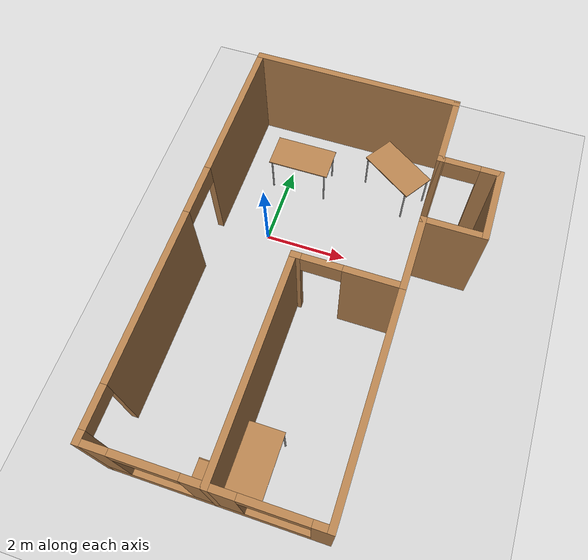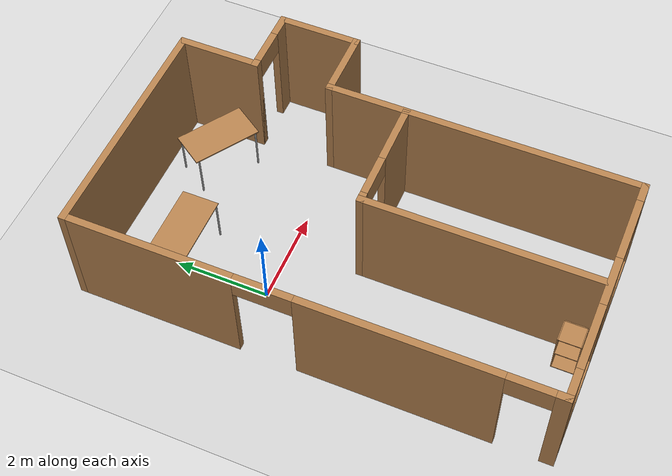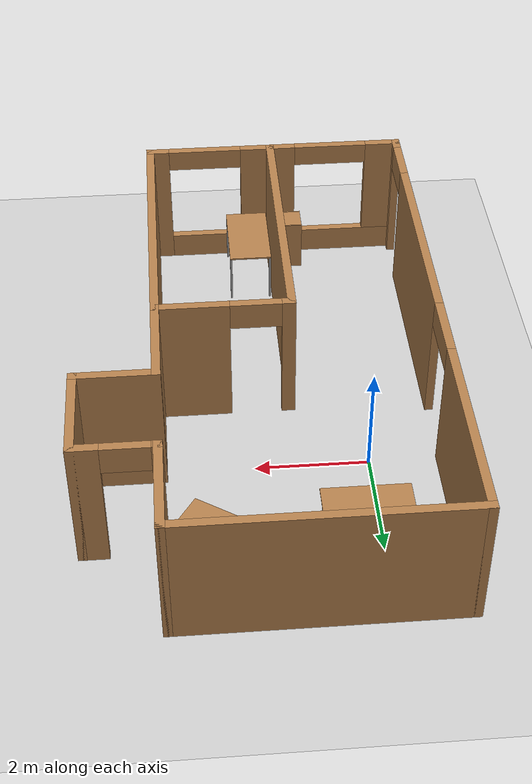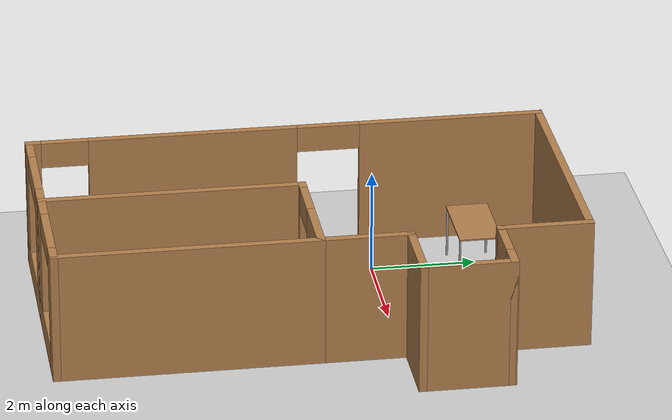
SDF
<sdf version="1.7">
 <world name="default">
  <light name="sun" type="directional">
   <pose>0 0 10 0 -0 0</pose>
   <diffuse>0.8 0.8 0.8 1</diffuse>
   <specular>0.2 0.2 0.2 1</specular>
   <attenuation>
    <range>1000</range>
    <constant>0.9</constant>
    <linear>0.01</linear>
    <quadratic>0.001</quadratic>
   </attenuation>
   <direction>-0.5 0.1 -0.9</direction>
   <spot><inner_angle>0</inner_angle><outer_angle>0</outer_angle><falloff>0</falloff></spot>
  </light>
  <model name="ground_plane">
   <static>1</static>
   <link name="link">
    <collision name="collision">
     <geometry><plane><normal>0 0 1</normal><size>100 100</size></plane></geometry>
     <surface>
      <contact><collide_bitmask>65535</collide_bitmask></contact>
      <friction><ode><mu>100</mu><mu2>50</mu2></ode></friction>
     </surface>
    </collision>
    <visual name="visual">
     <cast_shadows>0</cast_shadows>
     <geometry><plane><normal>0 0 1</normal><size>100 100</size></plane></geometry>
     <material>
      <script><uri>file://media/materials/scripts/gazebo.material</uri><name>Gazebo/Grey</name></script>
     </material>
    </visual>
   </link>
  </model>
  <gravity>0 0 -9.8</gravity>
  <magnetic_field>6e-06 2.3e-05 -4.2e-05</magnetic_field>
  <atmosphere type="adiabatic"/>
  <physics type="ode">
   <max_step_size>0.001</max_step_size>
   <real_time_factor>1</real_time_factor>
   <real_time_update_rate>1000</real_time_update_rate>
  </physics>
  <scene><ambient>0.4 0.4 0.4 1</ambient><background>0.7 0.7 0.7 1</background><shadows>1</shadows></scene>
  <audio><device>default</device></audio>
  <spherical_coordinates>
   <surface_model>EARTH_WGS84</surface_model>
   <latitude_deg>0</latitude_deg>
   <longitude_deg>0</longitude_deg>
   <elevation>0</elevation>
   <heading_deg>0</heading_deg>
  </spherical_coordinates>
  <model name="Home">
   <pose>1.84264 -1.46546 0 0 -0 0</pose>
   <link name="Wall_10">
    <collision name="Wall_10_Collision">
     <geometry><box><size>1.5 0.15 2.5</size></box></geometry>
     <pose>0 0 1.25 0 -0 0</pose>
    </collision>
    <visual name="Wall_10_Visual">
     <pose>0 0 1.25 0 -0 0</pose>
     <geometry><box><size>1.5 0.15 2.5</size></box></geometry>
     <material>
      <script><uri>file://media/materials/scripts/gazebo.material</uri><name>Gazebo/Wood</name></script>
      <ambient>1 1 1 1</ambient>
     </material>
     <meta><layer>0</layer></meta>
    </visual>
    <pose>2.425 1.6 0 0 -0 3.14159</pose>
   </link>
   <link name="Wall_11">
    <collision name="Wall_11_Collision">
     <geometry><box><size>1.8 0.15 2.5</size></box></geometry>
     <pose>0 0 1.25 0 -0 0</pose>
    </collision>
    <visual name="Wall_11_Visual">
     <pose>0 0 1.25 0 -0 0</pose>
     <geometry><box><size>1.8 0.15 2.5</size></box></geometry>
     <material>
      <script><uri>file://media/materials/scripts/gazebo.material</uri><name>Gazebo/Wood</name></script>
      <ambient>1 1 1 1</ambient>
     </material>
     <meta><layer>0</layer></meta>
    </visual>
    <pose>1.75 0.775 0 0 -0 -1.5708</pose>
   </link>
   <link name="Wall_2">
    <collision name="Wall_2_Collision">
     <geometry><box><size>5 0.15 2.5</size></box></geometry>
     <pose>0 0 1.25 0 -0 0</pose>
    </collision>
    <visual name="Wall_2_Visual">
     <pose>0 0 1.25 0 -0 0</pose>
     <geometry><box><size>5 0.15 2.5</size></box></geometry>
     <material>
      <script><uri>file://media/materials/scripts/gazebo.material</uri><name>Gazebo/Wood</name></script>
      <ambient>1 1 1 1</ambient>
     </material>
     <meta><layer>0</layer></meta>
    </visual>
    <pose>-0.675 4.9 0 0 -0 0</pose>
   </link>
   <link name="Wall_20">
    <pose>-3.1 0 0 0 -0 -1.5708</pose>
    <visual name="Wall_20_Visual_0">
     <pose>-3.194 0 1.25 0 -0 0</pose>
     <geometry><box><size>3.562 0.15 2.5</size></box></geometry>
     <material>
      <script><uri>file://media/materials/scripts/gazebo.material</uri><name>Gazebo/Wood</name></script>
      <ambient>1 1 1 1</ambient>
     </material>
     <meta><layer>0</layer></meta>
    </visual>
    <collision name="Wall_20_Collision_0">
     <geometry><box><size>3.562 0.15 2.5</size></box></geometry>
     <pose>-3.194 0 1.25 0 -0 0</pose>
    </collision>
    <visual name="Wall_20_Visual_1">
     <pose>1.78318 0 1.25 0 -0 0</pose>
     <geometry><box><size>3.99237 0.15 2.5</size></box></geometry>
     <material>
      <script><uri>file://media/materials/scripts/gazebo.material</uri><name>Gazebo/Wood</name></script>
      <ambient>1 1 1 1</ambient>
     </material>
     <meta><layer>0</layer></meta>
    </visual>
    <collision name="Wall_20_Collision_1">
     <geometry><box><size>3.99237 0.15 2.5</size></box></geometry>
     <pose>1.78318 0 1.25 0 -0 0</pose>
    </collision>
    <visual name="Wall_20_Visual_2">
     <pose>4.82718 0 1.25 0 -0 0</pose>
     <geometry><box><size>0.295631 0.15 2.5</size></box></geometry>
     <material>
      <script><uri>file://media/materials/scripts/gazebo.material</uri><name>Gazebo/Wood</name></script>
      <ambient>1 1 1 1</ambient>
     </material>
     <meta><layer>0</layer></meta>
    </visual>
    <collision name="Wall_20_Collision_2">
     <geometry><box><size>0.295631 0.15 2.5</size></box></geometry>
     <pose>4.82718 0 1.25 0 -0 0</pose>
    </collision>
    <visual name="Wall_20_Visual_3">
     <pose>-0.813004 0 2.25 0 -0 0</pose>
     <geometry><box><size>1.2 0.15 0.5</size></box></geometry>
     <material>
      <script><uri>file://media/materials/scripts/gazebo.material</uri><name>Gazebo/Wood</name></script>
      <ambient>1 1 1 1</ambient>
     </material>
     <meta><layer>0</layer></meta>
    </visual>
    <collision name="Wall_20_Collision_3">
     <geometry><box><size>1.2 0.15 0.5</size></box></geometry>
     <pose>-0.813004 0 2.25 0 -0 0</pose>
    </collision>
    <visual name="Wall_20_Visual_4">
     <pose>4.22937 0 2.25 0 -0 0</pose>
     <geometry><box><size>0.9 0.15 0.5</size></box></geometry>
     <material>
      <script><uri>file://media/materials/scripts/gazebo.material</uri><name>Gazebo/Wood</name></script>
      <ambient>1 1 1 1</ambient>
     </material>
     <meta><layer>0</layer></meta>
    </visual>
    <collision name="Wall_20_Collision_4">
     <geometry><box><size>0.9 0.15 0.5</size></box></geometry>
     <pose>4.22937 0 2.25 0 -0 0</pose>
    </collision>
   </link>
   <link name="Wall_29">
    <collision name="Wall_29_Collision">
     <geometry><box><size>5 0.15 2.5</size></box></geometry>
     <pose>0 0 1.25 0 -0 0</pose>
    </collision>
    <visual name="Wall_29_Visual">
     <pose>0 0 1.25 0 -0 0</pose>
     <geometry><box><size>5 0.15 2.5</size></box></geometry>
     <material>
      <script><uri>file://media/materials/scripts/gazebo.material</uri><name>Gazebo/Wood</name></script>
      <ambient>1 1 1 1</ambient>
     </material>
     <meta><layer>0</layer></meta>
    </visual>
    <pose>1.75 -2.475 0 0 -0 -1.5708</pose>
   </link>
   <link name="Wall_30">
    <pose>-0.675 -4.9 0 0 -0 3.14159</pose>
    <visual name="Wall_30_Visual_0">
     <pose>-2.28128 0 1.25 0 -0 0</pose>
     <geometry><box><size>0.437446 0.15 2.5</size></box></geometry>
     <material>
      <script><uri>file://media/materials/scripts/gazebo.material</uri><name>Gazebo/Wood</name></script>
      <ambient>1 1 1 1</ambient>
     </material>
     <meta><layer>0</layer></meta>
    </visual>
    <collision name="Wall_30_Collision_0">
     <geometry><box><size>0.437446 0.15 2.5</size></box></geometry>
     <pose>-2.28128 0 1.25 0 -0 0</pose>
    </collision>
    <visual name="Wall_30_Visual_1">
     <pose>0.218723 0 0.25 0 -0 0</pose>
     <geometry><box><size>4.56255 0.15 0.5</size></box></geometry>
     <material>
      <script><uri>file://media/materials/scripts/gazebo.material</uri><name>Gazebo/Wood</name></script>
      <ambient>1 1 1 1</ambient>
     </material>
     <meta><layer>0</layer></meta>
    </visual>
    <collision name="Wall_30_Collision_1">
     <geometry><box><size>4.56255 0.15 0.5</size></box></geometry>
     <pose>0.218723 0 0.25 0 -0 0</pose>
    </collision>
    <visual name="Wall_30_Visual_2">
     <pose>-0.125066 0 1.5 0 -0 0</pose>
     <geometry><box><size>1.07498 0.15 2</size></box></geometry>
     <material>
      <script><uri>file://media/materials/scripts/gazebo.material</uri><name>Gazebo/Wood</name></script>
      <ambient>1 1 1 1</ambient>
     </material>
     <meta><layer>0</layer></meta>
    </visual>
    <collision name="Wall_30_Collision_2">
     <geometry><box><size>1.07498 0.15 2</size></box></geometry>
     <pose>-0.125066 0 1.5 0 -0 0</pose>
    </collision>
    <visual name="Wall_30_Visual_3">
     <pose>2.15621 0 1.5 0 -0 0</pose>
     <geometry><box><size>0.687579 0.15 2</size></box></geometry>
     <material>
      <script><uri>file://media/materials/scripts/gazebo.material</uri><name>Gazebo/Wood</name></script>
      <ambient>1 1 1 1</ambient>
     </material>
     <meta><layer>0</layer></meta>
    </visual>
    <collision name="Wall_30_Collision_3">
     <geometry><box><size>0.687579 0.15 2</size></box></geometry>
     <pose>2.15621 0 1.5 0 -0 0</pose>
    </collision>
    <visual name="Wall_30_Visual_4">
     <pose>-1.36255 0 2.3 0 -0 0</pose>
     <geometry><box><size>1.4 0.15 0.4</size></box></geometry>
     <material>
      <script><uri>file://media/materials/scripts/gazebo.material</uri><name>Gazebo/Wood</name></script>
      <ambient>1 1 1 1</ambient>
     </material>
     <meta><layer>0</layer></meta>
    </visual>
    <collision name="Wall_30_Collision_4">
     <geometry><box><size>1.4 0.15 0.4</size></box></geometry>
     <pose>-1.36255 0 2.3 0 -0 0</pose>
    </collision>
    <visual name="Wall_30_Visual_5">
     <pose>1.11242 0 2.3 0 -0 0</pose>
     <geometry><box><size>1.4 0.15 0.4</size></box></geometry>
     <material>
      <script><uri>file://media/materials/scripts/gazebo.material</uri><name>Gazebo/Wood</name></script>
      <ambient>1 1 1 1</ambient>
     </material>
     <meta><layer>0</layer></meta>
    </visual>
    <collision name="Wall_30_Collision_5">
     <geometry><box><size>1.4 0.15 0.4</size></box></geometry>
     <pose>1.11242 0 2.3 0 -0 0</pose>
    </collision>
   </link>
   <link name="Wall_4">
    <collision name="Wall_4_Collision">
     <geometry><box><size>1.8 0.15 2.5</size></box></geometry>
     <pose>0 0 1.25 0 -0 0</pose>
    </collision>
    <visual name="Wall_4_Visual">
     <pose>0 0 1.25 0 -0 0</pose>
     <geometry><box><size>1.8 0.15 2.5</size></box></geometry>
     <material>
      <script><uri>file://media/materials/scripts/gazebo.material</uri><name>Gazebo/Wood</name></script>
      <ambient>1 1 1 1</ambient>
     </material>
     <meta><layer>0</layer></meta>
    </visual>
    <pose>1.75 4.075 0 0 -0 -1.5708</pose>
   </link>
   <link name="Wall_44">
    <pose>0.575 -0.05 0 0 -0 3.14159</pose>
    <visual name="Wall_44_Visual_0">
     <pose>-0.570883 0 1.25 0 -0 0</pose>
     <geometry><box><size>1.35823 0.15 2.5</size></box></geometry>
     <material>
      <script><uri>file://media/materials/scripts/gazebo.material</uri><name>Gazebo/Wood</name></script>
      <ambient>1 1 1 1</ambient>
     </material>
     <meta><layer>0</layer></meta>
    </visual>
    <collision name="Wall_44_Collision_0">
     <geometry><box><size>1.35823 0.15 2.5</size></box></geometry>
     <pose>-0.570883 0 1.25 0 -0 0</pose>
    </collision>
    <visual name="Wall_44_Visual_1">
     <pose>1.12912 0 1.25 0 -0 0</pose>
     <geometry><box><size>0.241766 0.15 2.5</size></box></geometry>
     <material>
      <script><uri>file://media/materials/scripts/gazebo.material</uri><name>Gazebo/Wood</name></script>
      <ambient>1 1 1 1</ambient>
     </material>
     <meta><layer>0</layer></meta>
    </visual>
    <collision name="Wall_44_Collision_1">
     <geometry><box><size>0.241766 0.15 2.5</size></box></geometry>
     <pose>1.12912 0 1.25 0 -0 0</pose>
    </collision>
    <visual name="Wall_44_Visual_2">
     <pose>0.558234 0 2.25 0 -0 0</pose>
     <geometry><box><size>0.9 0.15 0.5</size></box></geometry>
     <material>
      <script><uri>file://media/materials/scripts/gazebo.material</uri><name>Gazebo/Wood</name></script>
      <ambient>1 1 1 1</ambient>
     </material>
     <meta><layer>0</layer></meta>
    </visual>
    <collision name="Wall_44_Collision_2">
     <geometry><box><size>0.9 0.15 0.5</size></box></geometry>
     <pose>0.558234 0 2.25 0 -0 0</pose>
    </collision>
   </link>
   <link name="Wall_45">
    <collision name="Wall_45_Collision">
     <geometry><box><size>5 0.15 2.5</size></box></geometry>
     <pose>0 0 1.25 0 -0 0</pose>
    </collision>
    <visual name="Wall_45_Visual">
     <pose>0 0 1.25 0 -0 0</pose>
     <geometry><box><size>5 0.15 2.5</size></box></geometry>
     <material>
      <script><uri>file://media/materials/scripts/gazebo.material</uri><name>Gazebo/Wood</name></script>
      <ambient>1 1 1 1</ambient>
     </material>
     <meta><layer>0</layer></meta>
    </visual>
    <pose>-0.6 -2.475 0 0 -0 -1.5708</pose>
   </link>
   <link name="Wall_6">
    <pose>2.425 3.25 0 0 -0 0</pose>
    <visual name="Wall_6_Visual_0">
     <pose>-0.660927 0 1.25 0 -0 0</pose>
     <geometry><box><size>0.178147 0.15 2.5</size></box></geometry>
     <material>
      <script><uri>file://media/materials/scripts/gazebo.material</uri><name>Gazebo/Wood</name></script>
      <ambient>1 1 1 1</ambient>
     </material>
     <meta><layer>0</layer></meta>
    </visual>
    <collision name="Wall_6_Collision_0">
     <geometry><box><size>0.178147 0.15 2.5</size></box></geometry>
     <pose>-0.660927 0 1.25 0 -0 0</pose>
    </collision>
    <visual name="Wall_6_Visual_1">
     <pose>0.489073 0 1.25 0 -0 0</pose>
     <geometry><box><size>0.521853 0.15 2.5</size></box></geometry>
     <material>
      <script><uri>file://media/materials/scripts/gazebo.material</uri><name>Gazebo/Wood</name></script>
      <ambient>1 1 1 1</ambient>
     </material>
     <meta><layer>0</layer></meta>
    </visual>
    <collision name="Wall_6_Collision_1">
     <geometry><box><size>0.521853 0.15 2.5</size></box></geometry>
     <pose>0.489073 0 1.25 0 -0 0</pose>
    </collision>
    <visual name="Wall_6_Visual_2">
     <pose>-0.171853 0 2.25 0 -0 0</pose>
     <geometry><box><size>0.8 0.15 0.5</size></box></geometry>
     <material>
      <script><uri>file://media/materials/scripts/gazebo.material</uri><name>Gazebo/Wood</name></script>
      <ambient>1 1 1 1</ambient>
     </material>
     <meta><layer>0</layer></meta>
    </visual>
    <collision name="Wall_6_Collision_2">
     <geometry><box><size>0.8 0.15 0.5</size></box></geometry>
     <pose>-0.171853 0 2.25 0 -0 0</pose>
    </collision>
   </link>
   <link name="Wall_8">
    <collision name="Wall_8_Collision">
     <geometry><box><size>1.8 0.15 2.5</size></box></geometry>
     <pose>0 0 1.25 0 -0 0</pose>
    </collision>
    <visual name="Wall_8_Visual">
     <pose>0 0 1.25 0 -0 0</pose>
     <geometry><box><size>1.8 0.15 2.5</size></box></geometry>
     <material>
      <script><uri>file://media/materials/scripts/gazebo.material</uri><name>Gazebo/Wood</name></script>
      <ambient>1 1 1 1</ambient>
     </material>
     <meta><layer>0</layer></meta>
    </visual>
    <pose>3.1 2.425 0 0 -0 -1.5708</pose>
   </link>
   <static>1</static>
  </model>
  <model name="table">
   <static>1</static>
   <link name="link">
    <collision name="surface">
     <pose>0 0 1 0 -0 0</pose>
     <geometry><box><size>1.5 0.8 0.03</size></box></geometry>
     <surface><friction><ode><mu>0.6</mu><mu2>0.6</mu2></ode></friction></surface>
    </collision>
    <visual name="visual1">
     <pose>0 0 1 0 -0 0</pose>
     <geometry><box><size>1.5 0.8 0.03</size></box></geometry>
     <material>
      <script><uri>file://media/materials/scripts/gazebo.material</uri><name>Gazebo/Wood</name></script>
     </material>
    </visual>
    <collision name="front_left_leg">
     <pose>0.68 0.38 0.5 0 -0 0</pose>
     <geometry><cylinder><radius>0.02</radius><length>1</length></cylinder></geometry>
    </collision>
    <visual name="front_left_leg">
     <pose>0.68 0.38 0.5 0 -0 0</pose>
     <geometry><cylinder><radius>0.02</radius><length>1</length></cylinder></geometry>
     <material>
      <script><uri>file://media/materials/scripts/gazebo.material</uri><name>Gazebo/Grey</name></script>
     </material>
    </visual>
    <collision name="front_right_leg">
     <pose>0.68 -0.38 0.5 0 -0 0</pose>
     <geometry><cylinder><radius>0.02</radius><length>1</length></cylinder></geometry>
    </collision>
    <visual name="front_right_leg">
     <pose>0.68 -0.38 0.5 0 -0 0</pose>
     <geometry><cylinder><radius>0.02</radius><length>1</length></cylinder></geometry>
     <material>
      <script><uri>file://media/materials/scripts/gazebo.material</uri><name>Gazebo/Grey</name></script>
     </material>
    </visual>
    <collision name="back_right_leg">
     <pose>-0.68 -0.38 0.5 0 -0 0</pose>
     <geometry><cylinder><radius>0.02</radius><length>1</length></cylinder></geometry>
    </collision>
    <visual name="back_right_leg">
     <pose>-0.68 -0.38 0.5 0 -0 0</pose>
     <geometry><cylinder><radius>0.02</radius><length>1</length></cylinder></geometry>
     <material>
      <script><uri>file://media/materials/scripts/gazebo.material</uri><name>Gazebo/Grey</name></script>
     </material>
    </visual>
    <collision name="back_left_leg">
     <pose>-0.68 0.38 0.5 0 -0 0</pose>
     <geometry><cylinder><radius>0.02</radius><length>1</length></cylinder></geometry>
    </collision>
    <visual name="back_left_leg">
     <pose>-0.68 0.38 0.5 0 -0 0</pose>
     <geometry><cylinder><radius>0.02</radius><length>1</length></cylinder></geometry>
     <material>
      <script><uri>file://media/materials/scripts/gazebo.material</uri><name>Gazebo/Grey</name></script>
     </material>
    </visual>
   </link>
   <pose>1.7423 -5.48605 0 0 -0 1.56969</pose>
  </model>
  <model name="table_0">
   <static>1</static>
   <link name="link">
    <collision name="surface">
     <pose>0 0 1 0 -0 0</pose>
     <geometry><box><size>1.5 0.8 0.03</size></box></geometry>
     <surface><friction><ode><mu>0.6</mu><mu2>0.6</mu2></ode></friction></surface>
    </collision>
    <visual name="visual1">
     <pose>0 0 1 0 -0 0</pose>
     <geometry><box><size>1.5 0.8 0.03</size></box></geometry>
     <material>
      <script><uri>file://media/materials/scripts/gazebo.material</uri><name>Gazebo/Wood</name></script>
     </material>
    </visual>
    <collision name="front_left_leg">
     <pose>0.68 0.38 0.5 0 -0 0</pose>
     <geometry><cylinder><radius>0.02</radius><length>1</length></cylinder></geometry>
    </collision>
    <visual name="front_left_leg">
     <pose>0.68 0.38 0.5 0 -0 0</pose>
     <geometry><cylinder><radius>0.02</radius><length>1</length></cylinder></geometry>
     <material>
      <script><uri>file://media/materials/scripts/gazebo.material</uri><name>Gazebo/Grey</name></script>
     </material>
    </visual>
    <collision name="front_right_leg">
     <pose>0.68 -0.38 0.5 0 -0 0</pose>
     <geometry><cylinder><radius>0.02</radius><length>1</length></cylinder></geometry>
    </collision>
    <visual name="front_right_leg">
     <pose>0.68 -0.38 0.5 0 -0 0</pose>
     <geometry><cylinder><radius>0.02</radius><length>1</length></cylinder></geometry>
     <material>
      <script><uri>file://media/materials/scripts/gazebo.material</uri><name>Gazebo/Grey</name></script>
     </material>
    </visual>
    <collision name="back_right_leg">
     <pose>-0.68 -0.38 0.5 0 -0 0</pose>
     <geometry><cylinder><radius>0.02</radius><length>1</length></cylinder></geometry>
    </collision>
    <visual name="back_right_leg">
     <pose>-0.68 -0.38 0.5 0 -0 0</pose>
     <geometry><cylinder><radius>0.02</radius><length>1</length></cylinder></geometry>
     <material>
      <script><uri>file://media/materials/scripts/gazebo.material</uri><name>Gazebo/Grey</name></script>
     </material>
    </visual>
    <collision name="back_left_leg">
     <pose>-0.68 0.38 0.5 0 -0 0</pose>
     <geometry><cylinder><radius>0.02</radius><length>1</length></cylinder></geometry>
    </collision>
    <visual name="back_left_leg">
     <pose>-0.68 0.38 0.5 0 -0 0</pose>
     <geometry><cylinder><radius>0.02</radius><length>1</length></cylinder></geometry>
     <material>
      <script><uri>file://media/materials/scripts/gazebo.material</uri><name>Gazebo/Grey</name></script>
     </material>
    </visual>
   </link>
   <pose>0.30005 1.91166 0 0 -0 0</pose>
  </model>
  <model name="cabinet">
   <static>1</static>
   <link name="cabinet_bottom_plate">
    <inertial>
     <pose>0 0 -1 0 -0 0</pose>
     <inertia><ixx>2.05</ixx><ixy>0</ixy><ixz>0</ixz><iyy>2.05</iyy><iyz>0</iyz><izz>2.05</izz></inertia>
     <mass>25</mass>
    </inertial>
    <collision name="cabinet_bottom_plate_geom">
     <pose>0 0 0.01 0 -0 0</pose>
     <geometry><box><size>0.45 0.45 0.02</size></box></geometry>
    </collision>
    <visual name="cabinet_bottom_plate_geom_visual">
     <pose>0 0 0.01 0 -0 0</pose>
     <geometry><box><size>0.45 0.45 0.02</size></box></geometry>
     <material>
      <script><uri>file://media/materials/scripts/gazebo.material</uri><name>Gazebo/Wood</name></script>
     </material>
    </visual>
    <collision name="cabinet_bottom_plate_geom_cabinet_back_plate">
     <pose>0.235 0 0.51 0 -0 0</pose>
     <geometry><box><size>0.02 0.45 1.02</size></box></geometry>
    </collision>
    <visual name="cabinet_bottom_plate_geom_cabinet_back_plate_visual">
     <pose>0.235 0 0.51 0 -0 0</pose>
     <geometry><box><size>0.02 0.45 1.02</size></box></geometry>
     <material>
      <script><uri>file://media/materials/scripts/gazebo.material</uri><name>Gazebo/Wood</name></script>
     </material>
    </visual>
    <collision name="cabinet_bottom_plate_geom_cabinet_left_plate">
     <pose>0 0.235 0.51 0 -0 0</pose>
     <geometry><box><size>0.45 0.02 1.02</size></box></geometry>
    </collision>
    <visual name="cabinet_bottom_plate_geom_cabinet_left_plate_visual">
     <pose>0 0.235 0.51 0 -0 0</pose>
     <geometry><box><size>0.45 0.02 1.02</size></box></geometry>
     <material>
      <script><uri>file://media/materials/scripts/gazebo.material</uri><name>Gazebo/Wood</name></script>
     </material>
    </visual>
    <collision name="cabinet_bottom_plate_geom_cabinet_middle_plate">
     <pose>0 0 0.51 0 -0 0</pose>
     <geometry><box><size>0.45 0.45 0.02</size></box></geometry>
    </collision>
    <visual name="cabinet_bottom_plate_geom_cabinet_middle_plate_visual">
     <pose>0 0 0.51 0 -0 0</pose>
     <geometry><box><size>0.45 0.45 0.02</size></box></geometry>
     <material>
      <script><uri>file://media/materials/scripts/gazebo.material</uri><name>Gazebo/Wood</name></script>
     </material>
    </visual>
    <collision name="cabinet_bottom_plate_geom_cabinet_right_plate">
     <pose>0 -0.235 0.51 0 -0 0</pose>
     <geometry><box><size>0.45 0.02 1.02</size></box></geometry>
    </collision>
    <visual name="cabinet_bottom_plate_geom_cabinet_right_plate_visual">
     <pose>0 -0.235 0.51 0 -0 0</pose>
     <geometry><box><size>0.45 0.02 1.02</size></box></geometry>
     <material>
      <script><uri>file://media/materials/scripts/gazebo.material</uri><name>Gazebo/Wood</name></script>
     </material>
    </visual>
    <collision name="cabinet_bottom_plate_geom_cabinet_top_plate">
     <pose>0 0 1.01 0 -0 0</pose>
     <geometry><box><size>0.45 0.45 0.02</size></box></geometry>
    </collision>
    <visual name="cabinet_bottom_plate_geom_cabinet_top_plate_visual">
     <pose>0 0 1.01 0 -0 0</pose>
     <geometry><box><size>0.45 0.45 0.02</size></box></geometry>
     <material>
      <script><uri>file://media/materials/scripts/gazebo.material</uri><name>Gazebo/Wood</name></script>
     </material>
    </visual>
   </link>
   <pose>0.874607 -5.99106 0 0 -0 0</pose>
  </model>
  <model name="table_1">
   <static>1</static>
   <link name="link">
    <collision name="surface">
     <pose>0 0 1 0 -0 0</pose>
     <geometry><box><size>1.5 0.8 0.03</size></box></geometry>
     <surface><friction><ode><mu>0.6</mu><mu2>0.6</mu2></ode></friction></surface>
    </collision>
    <visual name="visual1">
     <pose>0 0 1 0 -0 0</pose>
     <geometry><box><size>1.5 0.8 0.03</size></box></geometry>
     <material>
      <script><uri>file://media/materials/scripts/gazebo.material</uri><name>Gazebo/Wood</name></script>
     </material>
    </visual>
    <collision name="front_left_leg">
     <pose>0.68 0.38 0.5 0 -0 0</pose>
     <geometry><cylinder><radius>0.02</radius><length>1</length></cylinder></geometry>
    </collision>
    <visual name="front_left_leg">
     <pose>0.68 0.38 0.5 0 -0 0</pose>
     <geometry><cylinder><radius>0.02</radius><length>1</length></cylinder></geometry>
     <material>
      <script><uri>file://media/materials/scripts/gazebo.material</uri><name>Gazebo/Grey</name></script>
     </material>
    </visual>
    <collision name="front_right_leg">
     <pose>0.68 -0.38 0.5 0 -0 0</pose>
     <geometry><cylinder><radius>0.02</radius><length>1</length></cylinder></geometry>
    </collision>
    <visual name="front_right_leg">
     <pose>0.68 -0.38 0.5 0 -0 0</pose>
     <geometry><cylinder><radius>0.02</radius><length>1</length></cylinder></geometry>
     <material>
      <script><uri>file://media/materials/scripts/gazebo.material</uri><name>Gazebo/Grey</name></script>
     </material>
    </visual>
    <collision name="back_right_leg">
     <pose>-0.68 -0.38 0.5 0 -0 0</pose>
     <geometry><cylinder><radius>0.02</radius><length>1</length></cylinder></geometry>
    </collision>
    <visual name="back_right_leg">
     <pose>-0.68 -0.38 0.5 0 -0 0</pose>
     <geometry><cylinder><radius>0.02</radius><length>1</length></cylinder></geometry>
     <material>
      <script><uri>file://media/materials/scripts/gazebo.material</uri><name>Gazebo/Grey</name></script>
     </material>
    </visual>
    <collision name="back_left_leg">
     <pose>-0.68 0.38 0.5 0 -0 0</pose>
     <geometry><cylinder><radius>0.02</radius><length>1</length></cylinder></geometry>
    </collision>
    <visual name="back_left_leg">
     <pose>-0.68 0.38 0.5 0 -0 0</pose>
     <geometry><cylinder><radius>0.02</radius><length>1</length></cylinder></geometry>
     <material>
      <script><uri>file://media/materials/scripts/gazebo.material</uri><name>Gazebo/Grey</name></script>
     </material>
    </visual>
   </link>
   <pose>2.65815 2.31633 0 0 0 -0.581314</pose>
  </model>
 </world>
</sdf>
